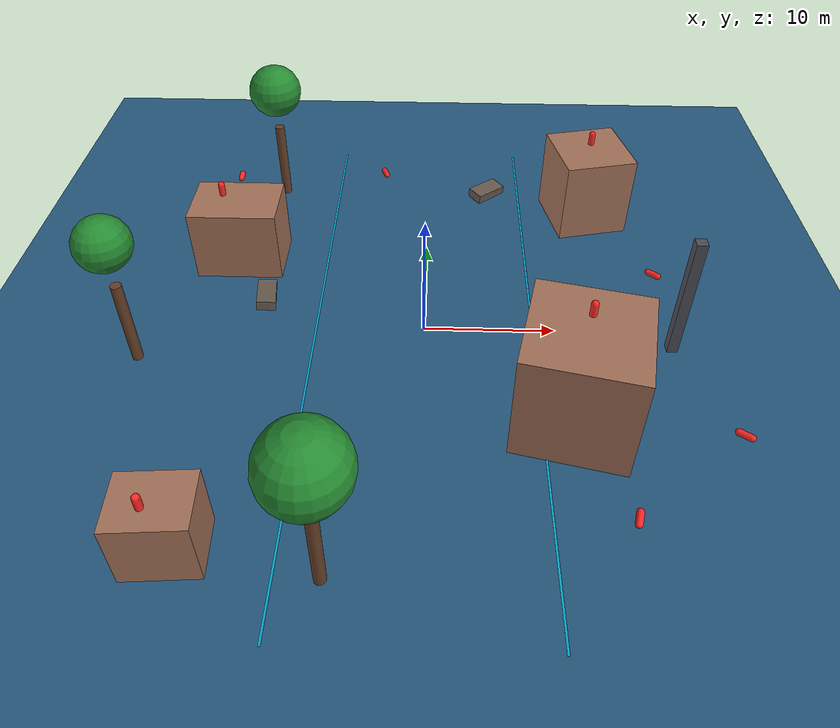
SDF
<?xml version="1.0" encoding="UTF-8"?>
<sdf version="1.9">
  <world name="rescueswarm_flood_zone">
    <physics type="ode">
      <max_step_size>0.004</max_step_size>
      <real_time_factor>1.0</real_time_factor>
      <real_time_update_rate>250</real_time_update_rate>
    </physics>
    <gravity>0 0 -9.8</gravity>
    <magnetic_field>6e-06 2.3e-05 -4.2e-05</magnetic_field>
    <atmosphere type="adiabatic"/>

    <scene>
      <grid>true</grid>
      <ambient>0.6 0.6 0.6 1</ambient>
      <background>0.55 0.65 0.82 1</background>
      <shadows>false</shadows>
    </scene>

    <spherical_coordinates>
      <surface_model>EARTH_WGS84</surface_model>
      <world_frame_orientation>ENU</world_frame_orientation>
      <latitude_deg>28.6139</latitude_deg>
      <longitude_deg>77.2090</longitude_deg>
      <elevation>0</elevation>
    </spherical_coordinates>

    <model name="ground_plane">
      <static>true</static>
      <link name="link">
        <collision name="collision">
          <geometry><plane><normal>0 0 1</normal><size>50 50</size></plane></geometry>
          <surface><friction><ode/></friction></surface>
        </collision>
        <visual name="visual">
          <geometry><plane><normal>0 0 1</normal><size>50 50</size></plane></geometry>
          <material>
            <ambient>0.12 0.28 0.38 1</ambient>
            <diffuse>0.15 0.35 0.50 1</diffuse>
            <specular>0.1 0.1 0.1 1</specular>
          </material>
        </visual>
      </link>
    </model>

    <light name="sunUTC" type="directional">
      <pose>0 0 100 0 0 0</pose>
      <cast_shadows>true</cast_shadows>
      <intensity>1</intensity>
      <direction>0.001 0.625 -0.78</direction>
      <diffuse>0.904 0.904 0.904 1</diffuse>
      <specular>0.271 0.271 0.271 1</specular>
      <attenuation><range>2000</range><linear>0</linear><constant>1</constant><quadratic>0</quadratic></attenuation>
    </light>

    <!-- Faint Visual Sector Boundary Lines (Drone 0 / Drone 1 / Drone 2 Sectors) -->
    <model name="border_line_west_center">
      <static>true</static>
      <pose>-8.33 0 0.02 0 0 0</pose>
      <link name="link">
        <visual name="vis">
          <geometry><box><size>0.15 50.0 0.03</size></box></geometry>
          <material>
            <ambient>0.0 0.85 1.0 0.7</ambient>
            <diffuse>0.0 0.85 1.0 0.7</diffuse>
            <emissive>0.0 0.4 0.6 1</emissive>
          </material>
        </visual>
      </link>
    </model>

    <model name="border_line_center_east">
      <static>true</static>
      <pose>8.33 0 0.02 0 0 0</pose>
      <link name="link">
        <visual name="vis">
          <geometry><box><size>0.15 50.0 0.03</size></box></geometry>
          <material>
            <ambient>0.0 0.85 1.0 0.7</ambient>
            <diffuse>0.0 0.85 1.0 0.7</diffuse>
            <emissive>0.0 0.4 0.6 1</emissive>
          </material>
        </visual>
      </link>
    </model>

    <model name="house_1">
      <static>true</static>
      <pose>13.9 15.4 3.5 0 0 0.22</pose>
      <link name="link">
        <collision name="col"><geometry><box><size>6.0 6.0 7.0</size></box></geometry></collision>
        <visual name="walls"><geometry><box><size>6.0 6.0 7.0</size></box></geometry>
          <material><ambient>0.55 0.38 0.28 1</ambient><diffuse>0.65 0.45 0.35 1</diffuse></material>
        </visual>
      </link>
    </model>

    <model name="house_2">
      <static>true</static>
      <pose>-15.4 8.2 3.0 0 0 -0.0</pose>
      <link name="link">
        <collision name="col"><geometry><box><size>7.0 5.0 6.0</size></box></geometry></collision>
        <visual name="walls"><geometry><box><size>7.0 5.0 6.0</size></box></geometry>
          <material><ambient>0.55 0.38 0.28 1</ambient><diffuse>0.65 0.45 0.35 1</diffuse></material>
        </visual>
      </link>
    </model>

    <model name="house_3">
      <static>true</static>
      <pose>10.5 -8.6 4.25 0 0 -0.22</pose>
      <link name="link">
        <collision name="col"><geometry><box><size>8.0 8.0 8.5</size></box></geometry></collision>
        <visual name="walls"><geometry><box><size>8.0 8.0 8.5</size></box></geometry>
          <material><ambient>0.55 0.38 0.28 1</ambient><diffuse>0.65 0.45 0.35 1</diffuse></material>
        </visual>
      </link>
    </model>

    <model name="house_4">
      <static>true</static>
      <pose>-14.8 -19.4 2.5 0 0 0.07</pose>
      <link name="link">
        <collision name="col"><geometry><box><size>5.0 4.0 5.0</size></box></geometry></collision>
        <visual name="walls"><geometry><box><size>5.0 4.0 5.0</size></box></geometry>
          <material><ambient>0.55 0.38 0.28 1</ambient><diffuse>0.65 0.45 0.35 1</diffuse></material>
        </visual>
      </link>
    </model>

    <model name="tree_1">
      <static>true</static>
      <pose>-13.4 18.4 0 0 0 0</pose>
      <link name="link">
        <!-- Trunk -->
        <pose>0 0 0 0 0 0</pose>
        <collision name="trunk_col">
          <pose>0 0 3.4499999999999997 0 0 0</pose>
          <geometry><cylinder><radius>0.4</radius><length>6.8999999999999995</length></cylinder></geometry>
        </collision>
        <visual name="trunk_vis">
          <pose>0 0 3.4499999999999997 0 0 0</pose>
          <geometry><cylinder><radius>0.4</radius><length>6.8999999999999995</length></cylinder></geometry>
          <material><ambient>0.3 0.2 0.1 1</ambient><diffuse>0.4 0.25 0.15 1</diffuse></material>
        </visual>
        <!-- Foliage Canopy -->
        <collision name="canopy_col">
          <pose>0 0 10.4 0 0 0</pose>
          <geometry><sphere><radius>2.2</radius></sphere></geometry>
        </collision>
        <visual name="canopy_vis">
          <pose>0 0 10.4 0 0 0</pose>
          <geometry><sphere><radius>2.2</radius></sphere></geometry>
          <material><ambient>0.1 0.4 0.15 1</ambient><diffuse>0.15 0.55 0.2 1</diffuse></material>
        </visual>
      </link>
    </model>

    <model name="tree_2">
      <static>true</static>
      <pose>-5.5 -21.0 0 0 0 0</pose>
      <link name="link">
        <!-- Trunk -->
        <pose>0 0 0 0 0 0</pose>
        <collision name="trunk_col">
          <pose>0 0 3.57 0 0 0</pose>
          <geometry><cylinder><radius>0.4</radius><length>7.14</length></cylinder></geometry>
        </collision>
        <visual name="trunk_vis">
          <pose>0 0 3.57 0 0 0</pose>
          <geometry><cylinder><radius>0.4</radius><length>7.14</length></cylinder></geometry>
          <material><ambient>0.3 0.2 0.1 1</ambient><diffuse>0.4 0.25 0.15 1</diffuse></material>
        </visual>
        <!-- Foliage Canopy -->
        <collision name="canopy_col">
          <pose>0 0 10.55 0 0 0</pose>
          <geometry><sphere><radius>2.7</radius></sphere></geometry>
        </collision>
        <visual name="canopy_vis">
          <pose>0 0 10.55 0 0 0</pose>
          <geometry><sphere><radius>2.7</radius></sphere></geometry>
          <material><ambient>0.1 0.4 0.15 1</ambient><diffuse>0.15 0.55 0.2 1</diffuse></material>
        </visual>
      </link>
    </model>

    <model name="tree_3">
      <static>true</static>
      <pose>-21.2 -3.7 0 0 0 0</pose>
      <link name="link">
        <!-- Trunk -->
        <pose>0 0 0 0 0 0</pose>
        <collision name="trunk_col">
          <pose>0 0 3.48 0 0 0</pose>
          <geometry><cylinder><radius>0.4</radius><length>6.96</length></cylinder></geometry>
        </collision>
        <visual name="trunk_vis">
          <pose>0 0 3.48 0 0 0</pose>
          <geometry><cylinder><radius>0.4</radius><length>6.96</length></cylinder></geometry>
          <material><ambient>0.3 0.2 0.1 1</ambient><diffuse>0.4 0.25 0.15 1</diffuse></material>
        </visual>
        <!-- Foliage Canopy -->
        <collision name="canopy_col">
          <pose>0 0 10.6 0 0 0</pose>
          <geometry><sphere><radius>2.0</radius></sphere></geometry>
        </collision>
        <visual name="canopy_vis">
          <pose>0 0 10.6 0 0 0</pose>
          <geometry><sphere><radius>2.0</radius></sphere></geometry>
          <material><ambient>0.1 0.4 0.15 1</ambient><diffuse>0.15 0.55 0.2 1</diffuse></material>
        </visual>
      </link>
    </model>

    <model name="tower_1">
      <static>true</static>
      <pose>18.6 -1.6 5.05 0 0 0</pose>
      <link name="link">
        <collision name="col"><geometry><box><size>0.8 0.8 10.1</size></box></geometry></collision>
        <visual name="vis"><geometry><box><size>0.8 0.8 10.1</size></box></geometry>
          <material><ambient>0.2 0.2 0.25 1</ambient><diffuse>0.3 0.3 0.35 1</diffuse></material>
        </visual>
      </link>
    </model>

    <model name="debris_1">
      <static>true</static>
      <pose>5.4 18.4 0.4 0.1 0.05 0.72</pose>
      <link name="link">
        <visual name="vis"><geometry><box><size>3.0 1.5 0.8</size></box></geometry>
          <material><ambient>0.35 0.3 0.25 1</ambient><diffuse>0.4 0.35 0.3 1</diffuse></material>
        </visual>
        <collision name="col"><geometry><box><size>3.0 1.5 0.8</size></box></geometry></collision>
      </link>
    </model>

    <model name="debris_2">
      <static>true</static>
      <pose>15.8 2.0 0.4 0.1 0.05 1.53</pose>
      <link name="link">
        <visual name="vis"><geometry><box><size>3.0 1.5 0.8</size></box></geometry>
          <material><ambient>0.35 0.3 0.25 1</ambient><diffuse>0.4 0.35 0.3 1</diffuse></material>
        </visual>
        <collision name="col"><geometry><box><size>3.0 1.5 0.8</size></box></geometry></collision>
      </link>
    </model>

    <model name="debris_3">
      <static>true</static>
      <pose>-12.7 3.1 0.4 0.1 0.05 1.7</pose>
      <link name="link">
        <visual name="vis"><geometry><box><size>3.0 1.5 0.8</size></box></geometry>
          <material><ambient>0.35 0.3 0.25 1</ambient><diffuse>0.4 0.35 0.3 1</diffuse></material>
        </visual>
        <collision name="col"><geometry><box><size>3.0 1.5 0.8</size></box></geometry></collision>
      </link>
    </model>

    <model name="survivor_1">
      <static>true</static>
      <pose>14.0 16.1 7.5 0.0 0.0 0.0</pose>
      <link name="link">
        <visual name="body"><geometry><capsule><radius>0.25</radius><length>0.9</length></capsule></geometry>
          <material><ambient>0.9 0.1 0.1 1</ambient><diffuse>1.0 0.15 0.15 1</diffuse></material>
        </visual>
        <collision name="col"><geometry><capsule><radius>0.25</radius><length>0.9</length></capsule></geometry></collision>
      </link>
    </model>

    <model name="survivor_2">
      <static>true</static>
      <pose>-16.6 8.9 6.5 0.0 0.0 0.0</pose>
      <link name="link">
        <visual name="body"><geometry><capsule><radius>0.25</radius><length>0.9</length></capsule></geometry>
          <material><ambient>0.9 0.1 0.1 1</ambient><diffuse>1.0 0.15 0.15 1</diffuse></material>
        </visual>
        <collision name="col"><geometry><capsule><radius>0.25</radius><length>0.9</length></capsule></geometry></collision>
      </link>
    </model>

    <model name="survivor_3">
      <static>true</static>
      <pose>10.8 -7.3 9.0 0.0 0.0 0.0</pose>
      <link name="link">
        <visual name="body"><geometry><capsule><radius>0.25</radius><length>0.9</length></capsule></geometry>
          <material><ambient>0.9 0.1 0.1 1</ambient><diffuse>1.0 0.15 0.15 1</diffuse></material>
        </visual>
        <collision name="col"><geometry><capsule><radius>0.25</radius><length>0.9</length></capsule></geometry></collision>
      </link>
    </model>

    <model name="survivor_4">
      <static>true</static>
      <pose>-15.2 -19.9 5.5 0.0 0.0 0.0</pose>
      <link name="link">
        <visual name="body"><geometry><capsule><radius>0.25</radius><length>0.9</length></capsule></geometry>
          <material><ambient>0.9 0.1 0.1 1</ambient><diffuse>1.0 0.15 0.15 1</diffuse></material>
        </visual>
        <collision name="col"><geometry><capsule><radius>0.25</radius><length>0.9</length></capsule></geometry></collision>
      </link>
    </model>

    <model name="survivor_5">
      <static>true</static>
      <pose>-6.8 -10.8 0.5 1.57 0.0 0.82</pose>
      <link name="link">
        <visual name="body"><geometry><capsule><radius>0.25</radius><length>0.9</length></capsule></geometry>
          <material><ambient>0.9 0.1 0.1 1</ambient><diffuse>1.0 0.15 0.15 1</diffuse></material>
        </visual>
        <collision name="col"><geometry><capsule><radius>0.25</radius><length>0.9</length></capsule></geometry></collision>
      </link>
    </model>

    <model name="survivor_6">
      <static>true</static>
      <pose>21.7 -10.1 0.5 1.57 0.0 0.98</pose>
      <link name="link">
        <visual name="body"><geometry><capsule><radius>0.25</radius><length>0.9</length></capsule></geometry>
          <material><ambient>0.9 0.1 0.1 1</ambient><diffuse>1.0 0.15 0.15 1</diffuse></material>
        </visual>
        <collision name="col"><geometry><capsule><radius>0.25</radius><length>0.9</length></capsule></geometry></collision>
      </link>
    </model>

    <model name="survivor_7">
      <static>true</static>
      <pose>-4.2 21.1 0.5 1.57 0.0 0.38</pose>
      <link name="link">
        <visual name="body"><geometry><capsule><radius>0.25</radius><length>0.9</length></capsule></geometry>
          <material><ambient>0.9 0.1 0.1 1</ambient><diffuse>1.0 0.15 0.15 1</diffuse></material>
        </visual>
        <collision name="col"><geometry><capsule><radius>0.25</radius><length>0.9</length></capsule></geometry></collision>
      </link>
    </model>

    <model name="survivor_8">
      <static>true</static>
      <pose>13.5 -16.7 0.5 1.57 0.0 2.86</pose>
      <link name="link">
        <visual name="body"><geometry><capsule><radius>0.25</radius><length>0.9</length></capsule></geometry>
          <material><ambient>0.9 0.1 0.1 1</ambient><diffuse>1.0 0.15 0.15 1</diffuse></material>
        </visual>
        <collision name="col"><geometry><capsule><radius>0.25</radius><length>0.9</length></capsule></geometry></collision>
      </link>
    </model>

    <model name="survivor_9">
      <static>true</static>
      <pose>18.7 6.5 0.5 1.57 0.0 0.89</pose>
      <link name="link">
        <visual name="body"><geometry><capsule><radius>0.25</radius><length>0.9</length></capsule></geometry>
          <material><ambient>0.9 0.1 0.1 1</ambient><diffuse>1.0 0.15 0.15 1</diffuse></material>
        </visual>
        <collision name="col"><geometry><capsule><radius>0.25</radius><length>0.9</length></capsule></geometry></collision>
      </link>
    </model>

    <model name="survivor_10">
      <static>true</static>
      <pose>-18.0 20.1 0.5 1.57 0.0 0.05</pose>
      <link name="link">
        <visual name="body"><geometry><capsule><radius>0.25</radius><length>0.9</length></capsule></geometry>
          <material><ambient>0.9 0.1 0.1 1</ambient><diffuse>1.0 0.15 0.15 1</diffuse></material>
        </visual>
        <collision name="col"><geometry><capsule><radius>0.25</radius><length>0.9</length></capsule></geometry></collision>
      </link>
    </model>

  </world>
</sdf>
